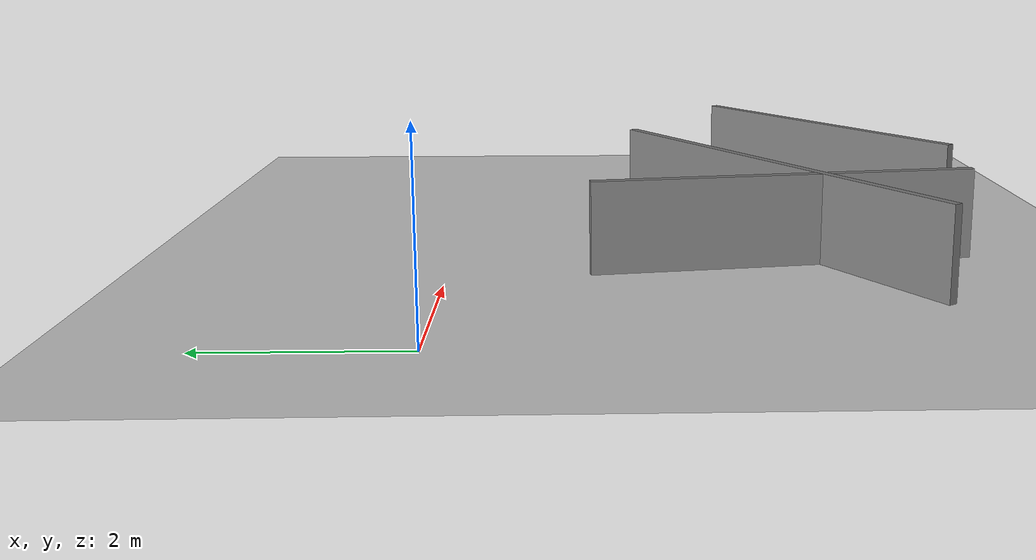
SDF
<?xml version='1.0' encoding='utf-8'?>
<sdf version="1.9">
  <world name="thee">
    <physics name="1ms" type="dart">
      <max_step_size>0.001</max_step_size>
      <real_time_factor>1</real_time_factor>
      <real_time_update_rate>1000</real_time_update_rate>
    </physics>
    <plugin name="gz::sim::systems::Physics" filename="gz-sim-physics-system" />
    <plugin name="gz::sim::systems::UserCommands" filename="gz-sim-user-commands-system" />
    <plugin name="gz::sim::systems::SceneBroadcaster" filename="gz-sim-scene-broadcaster-system" />
    <plugin name="gz::sim::systems::Contact" filename="gz-sim-contact-system" />
    <plugin name="gz::sim::systems::Sensors" filename="gz-sim-sensors-system">
      <render_engine>ogre2</render_engine>
    </plugin>
    <gravity>0 0 -9.8</gravity>
    <magnetic_field>6e-06 2.3e-05 -4.2e-05</magnetic_field>
    <atmosphere type="adiabatic" />
    <scene>
      <ambient>0.4 0.4 0.4 1</ambient>
      <background>0.7 0.7 0.7 1</background>
      <shadows>true</shadows>
    </scene>
    <model name="ground_plane">
      <static>true</static>
      <link name="link">
        <collision name="collision">
          <geometry>
            <plane>
              <normal>0 0 1</normal>
              <size>100 100</size>
            </plane>
          </geometry>
          <surface>
            <friction>
              <ode />
            </friction>
            <bounce />
            <contact />
          </surface>
        </collision>
        <visual name="visual">
          <geometry>
            <plane>
              <normal>0 0 1</normal>
              <size>100 100</size>
            </plane>
          </geometry>
          <material>
            <ambient>0.8 0.8 0.8 1</ambient>
            <diffuse>0.8 0.8 0.8 1</diffuse>
            <specular>0.8 0.8 0.8 1</specular>
          </material>
        </visual>
        <pose>0 0 0 0 -0 0</pose>
        <inertial>
          <pose>0 0 0 0 -0 0</pose>
          <mass>1</mass>
          <inertia>
            <ixx>1</ixx>
            <ixy>0</ixy>
            <ixz>0</ixz>
            <iyy>1</iyy>
            <iyz>0</iyz>
            <izz>1</izz>
          </inertia>
        </inertial>
        <enable_wind>false</enable_wind>
      </link>
      <pose>0 0 0 0 -0 0</pose>
      <self_collide>false</self_collide>
    </model>
    <light name="sun" type="directional">
      <pose>0 0 10 0 -0 0</pose>
      <cast_shadows>true</cast_shadows>
      <intensity>1</intensity>
      <direction>-0.5 0.1 -0.9</direction>
      <diffuse>0.8 0.8 0.8 1</diffuse>
      <specular>0.2 0.2 0.2 1</specular>
      <attenuation>
        <range>1000</range>
        <linear>0.01</linear>
        <constant>0.90000000000000002</constant>
        <quadratic>0.001</quadratic>
      </attenuation>
      <spot>
        <inner_angle>0</inner_angle>
        <outer_angle>0</outer_angle>
        <falloff>0</falloff>
      </spot>
    </light>
  <model name="wall_1">
            <static>true</static>
            <type>wall</type>
            <pose>3.500000 -3.550000 0.500000 0 0 -2.579095</pose>
            <link name="link">
                <collision name="collision">
                    <geometry><box><size>5.437830 0.100000 1.000000</size></box></geometry>
                </collision>
                <visual name="visual">
                    <geometry><box><size>5.437830 0.100000 1.000000</size></box></geometry>
                    <material>
                        <diffuse>0.5 0.5 0.5 1</diffuse>
                    </material>
                </visual></link></model><model name="wall_2">
            <static>true</static>
            <type>wall</type>
            <pose>2.700000 -3.600000 0.500000 0 0 1.712693</pose>
            <link name="link">
                <collision name="collision">
                    <geometry><box><size>4.242641 0.100000 1.000000</size></box></geometry>
                </collision>
                <visual name="visual">
                    <geometry><box><size>4.242641 0.100000 1.000000</size></box></geometry>
                    <material>
                        <diffuse>0.5 0.5 0.5 1</diffuse>
                    </material>
                </visual></link></model><model name="wall_3">
            <static>true</static>
            <type>wall</type>
            <pose>6.250000 -4.650000 0.500000 0 0 -2.521343</pose>
            <link name="link">
                <collision name="collision">
                    <geometry><box><size>4.301163 0.100000 1.000000</size></box></geometry>
                </collision>
                <visual name="visual">
                    <geometry><box><size>4.301163 0.100000 1.000000</size></box></geometry>
                    <material>
                        <diffuse>0.5 0.5 0.5 1</diffuse>
                    </material>
                </visual></link></model></world>
</sdf>
